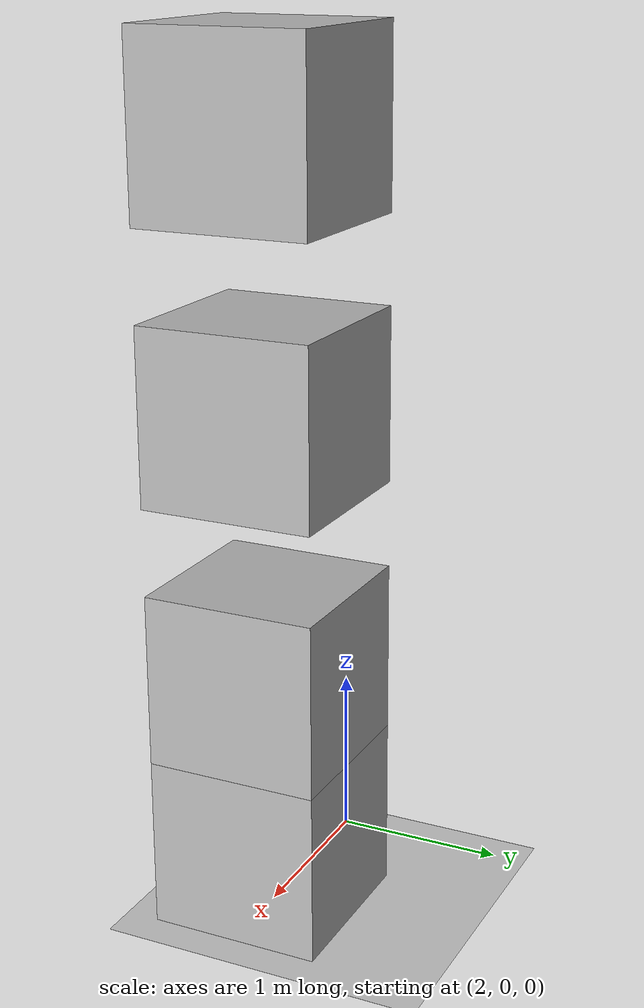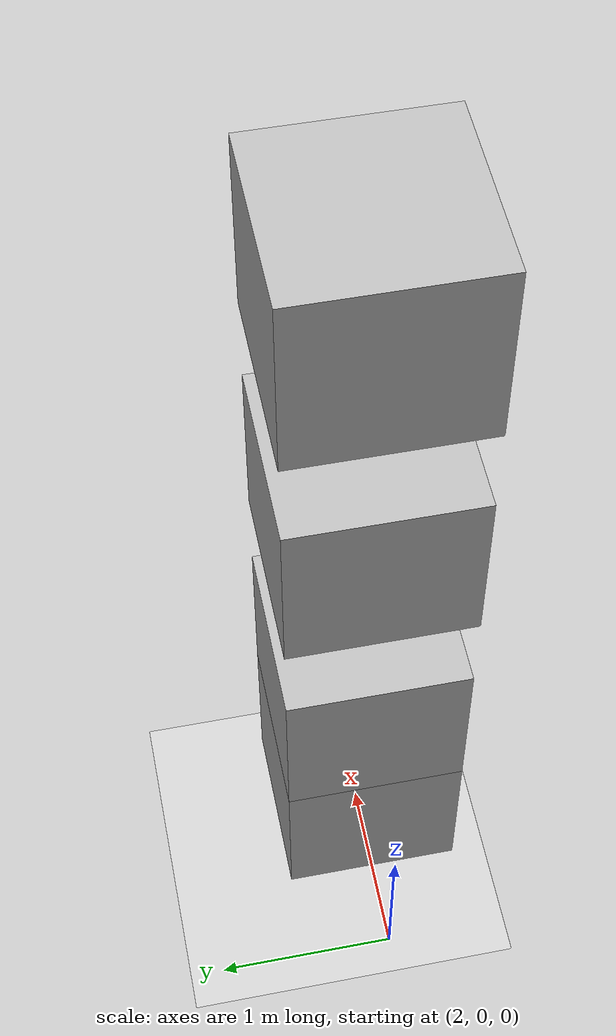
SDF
<?xml version="1.0"?>
<sdf version="1.6">
  <world name="default">
    <include>
      <uri>model://sun</uri>
    </include>
    <include>
      <uri>model://ground_plane</uri>
    </include>

    <model name="test_box">
      <pose>0 0 0 0 0 0</pose>
      <static>true</static>

      <link name="first_link">
        <pose>3 0 0.5 0 0 0</pose>
        <collision name="collision">
          <geometry>
            <box>
              <size>1 1 1</size>
            </box>
          </geometry>
        </collision>
        <visual name="visual_fist_link">
          <meta>
            <layer>0</layer>
          </meta>
          <geometry>
            <box>
              <size>1 1 1</size>
            </box>
          </geometry>
        </visual>
      </link>
      <link name="link2">
        <pose>3 0 1.5 0 0 0</pose>
        <collision name="collision">
          <geometry>
            <box>
              <size>1 1 1</size>
            </box>
          </geometry>
        </collision>
        <visual name="visual_link2">
          <geometry>
            <box>
              <size>1 1 1</size>
            </box>
          </geometry>
        </visual>
      </link>
      <link name="link3">
        <pose>3 0 3 0 0 0</pose>
        <collision name="collision">
          <geometry>
            <box>
              <size>1 1 1</size>
            </box>
          </geometry>
        </collision>
        <visual name="visual_link3">
          <geometry>
            <box>
              <size>1 1 1</size>
            </box>
          </geometry>
        </visual>
      </link>
      <link name="link4">
        <pose>3 0 4.5 0 0 0</pose>
        <collision name="collision">
          <geometry>
            <box>
              <size>1 1 1</size>
            </box>
          </geometry>
        </collision>
        <visual name="visual">
          <geometry>
            <box>
              <size>1 1 1</size>
            </box>
          </geometry>
        </visual>
      </link>
      <plugin name="model_transparency" filename="libfloor_transparency_gazebo_model_plugin.so">
        <reference_model>box_0</reference_model>
      </plugin>
    </model>
  </world>
</sdf>
